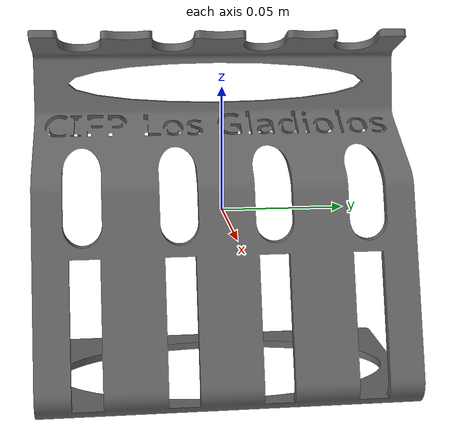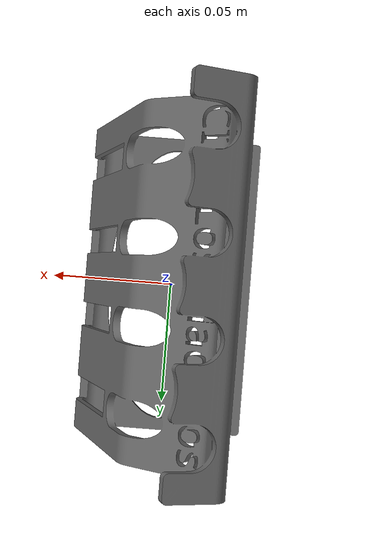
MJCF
<?xml version="1.0" ?>
<mujoco model="pipettes_stand">
  <asset>
    <material name="Scene_-_Root" specular="0.4000000000000001" shininess="0.001" rgba="0.40000000 0.40000000 0.40000000 1.0"/>
    <mesh file="../pipettes_stand/pipettes_stand.obj" scale="0.000625 0.000625 0.000625"/>
    <mesh file="../pipettes_stand/pipettes_stand_collision_0.obj" scale="0.000625 0.000625 0.000625"/>
    <mesh file="../pipettes_stand/pipettes_stand_collision_1.obj" scale="0.000625 0.000625 0.000625"/>
    <mesh file="../pipettes_stand/pipettes_stand_collision_2.obj" scale="0.000625 0.000625 0.000625"/>
    <mesh file="../pipettes_stand/pipettes_stand_collision_3.obj" scale="0.000625 0.000625 0.000625"/>
    <mesh file="../pipettes_stand/pipettes_stand_collision_4.obj" scale="0.000625 0.000625 0.000625"/>
    <mesh file="../pipettes_stand/pipettes_stand_collision_5.obj" scale="0.000625 0.000625 0.000625"/>
    <mesh file="../pipettes_stand/pipettes_stand_collision_6.obj" scale="0.000625 0.000625 0.000625"/>
    <mesh file="../pipettes_stand/pipettes_stand_collision_7.obj" scale="0.000625 0.000625 0.000625"/>
    <mesh file="../pipettes_stand/pipettes_stand_collision_8.obj" scale="0.000625 0.000625 0.000625"/>
    <mesh file="../pipettes_stand/pipettes_stand_collision_9.obj" scale="0.000625 0.000625 0.000625"/>
    <mesh file="../pipettes_stand/pipettes_stand_collision_10.obj" scale="0.000625 0.000625 0.000625"/>
    <mesh file="../pipettes_stand/pipettes_stand_collision_11.obj" scale="0.000625 0.000625 0.000625"/>
    <mesh file="../pipettes_stand/pipettes_stand_collision_12.obj" scale="0.000625 0.000625 0.000625"/>
    <mesh file="../pipettes_stand/pipettes_stand_collision_13.obj" scale="0.000625 0.000625 0.000625"/>
    <mesh file="../pipettes_stand/pipettes_stand_collision_14.obj" scale="0.000625 0.000625 0.000625"/>
    <mesh file="../pipettes_stand/pipettes_stand_collision_15.obj" scale="0.000625 0.000625 0.000625"/>
    <mesh file="../pipettes_stand/pipettes_stand_collision_16.obj" scale="0.000625 0.000625 0.000625"/>
    <mesh file="../pipettes_stand/pipettes_stand_collision_17.obj" scale="0.000625 0.000625 0.000625"/>
    <mesh file="../pipettes_stand/pipettes_stand_collision_18.obj" scale="0.000625 0.000625 0.000625"/>
    <mesh file="../pipettes_stand/pipettes_stand_collision_19.obj" scale="0.000625 0.000625 0.000625"/>
    <mesh file="../pipettes_stand/pipettes_stand_collision_20.obj" scale="0.000625 0.000625 0.000625"/>
    <mesh file="../pipettes_stand/pipettes_stand_collision_21.obj" scale="0.000625 0.000625 0.000625"/>
    <mesh file="../pipettes_stand/pipettes_stand_collision_22.obj" scale="0.000625 0.000625 0.000625"/>
    <mesh file="../pipettes_stand/pipettes_stand_collision_23.obj" scale="0.000625 0.000625 0.000625"/>
    <mesh file="../pipettes_stand/pipettes_stand_collision_24.obj" scale="0.000625 0.000625 0.000625"/>
    <mesh file="../pipettes_stand/pipettes_stand_collision_25.obj" scale="0.000625 0.000625 0.000625"/>
    <mesh file="../pipettes_stand/pipettes_stand_collision_26.obj" scale="0.000625 0.000625 0.000625"/>
    <mesh file="../pipettes_stand/pipettes_stand_collision_27.obj" scale="0.000625 0.000625 0.000625"/>
    <mesh file="../pipettes_stand/pipettes_stand_collision_28.obj" scale="0.000625 0.000625 0.000625"/>
    <mesh file="../pipettes_stand/pipettes_stand_collision_29.obj" scale="0.000625 0.000625 0.000625"/>
    <mesh file="../pipettes_stand/pipettes_stand_collision_30.obj" scale="0.000625 0.000625 0.000625"/>
    <mesh file="../pipettes_stand/pipettes_stand_collision_31.obj" scale="0.000625 0.000625 0.000625"/>
    <mesh file="../pipettes_stand/pipettes_stand_collision_32.obj" scale="0.000625 0.000625 0.000625"/>
    <mesh file="../pipettes_stand/pipettes_stand_collision_33.obj" scale="0.000625 0.000625 0.000625"/>
    <mesh file="../pipettes_stand/pipettes_stand_collision_34.obj" scale="0.000625 0.000625 0.000625"/>
    <mesh file="../pipettes_stand/pipettes_stand_collision_35.obj" scale="0.000625 0.000625 0.000625"/>
    <mesh file="../pipettes_stand/pipettes_stand_collision_36.obj" scale="0.000625 0.000625 0.000625"/>
    <mesh file="../pipettes_stand/pipettes_stand_collision_37.obj" scale="0.000625 0.000625 0.000625"/>
    <mesh file="../pipettes_stand/pipettes_stand_collision_38.obj" scale="0.000625 0.000625 0.000625"/>
    <mesh file="../pipettes_stand/pipettes_stand_collision_39.obj" scale="0.000625 0.000625 0.000625"/>
    <mesh file="../pipettes_stand/pipettes_stand_collision_40.obj" scale="0.000625 0.000625 0.000625"/>
    <mesh file="../pipettes_stand/pipettes_stand_collision_41.obj" scale="0.000625 0.000625 0.000625"/>
  </asset>
  <worldbody>
    <body name="pipettes_stand">
      <inertial pos="0 0 0.072395000159375" mass="0.02" diaginertia="0.0008 0.0008 0.0005"/>
      <geom material="Scene_-_Root" mesh="pipettes_stand" class="visual"/>
      <geom mesh="pipettes_stand_collision_0" rgba="0.8240573897192379 0.5104449831685928 0.20116122233466605 1" class="collision"/>
      <geom mesh="pipettes_stand_collision_1" rgba="0.6037161300379769 0.2277258404247967 0.3477076068366446 1" class="collision"/>
      <geom mesh="pipettes_stand_collision_2" rgba="0.8088337129805089 0.1271114478151849 0.8686890278926326 1" class="collision"/>
      <geom mesh="pipettes_stand_collision_3" rgba="0.7497385485333712 0.676776528606878 0.9144790000448622 1" class="collision"/>
      <geom mesh="pipettes_stand_collision_4" rgba="0.4850152955599798 0.8720595213370944 0.20333578630834515 1" class="collision"/>
      <geom mesh="pipettes_stand_collision_5" rgba="0.5573215921507524 0.4094182493810006 0.12511613046463654 1" class="collision"/>
      <geom mesh="pipettes_stand_collision_6" rgba="0.6511856266417332 0.9709497874084743 0.86296948224441 1" class="collision"/>
      <geom mesh="pipettes_stand_collision_7" rgba="0.33440750124740304 0.6088577832791392 0.4849724993788683 1" class="collision"/>
      <geom mesh="pipettes_stand_collision_8" rgba="0.9169382303132202 0.6791186357500446 0.581037439566858 1" class="collision"/>
      <geom mesh="pipettes_stand_collision_9" rgba="0.5913310927874232 0.7735528496211479 0.2993694530994001 1" class="collision"/>
      <geom mesh="pipettes_stand_collision_10" rgba="0.49750027581795564 0.3586493985458328 0.35425236299500684 1" class="collision"/>
      <geom mesh="pipettes_stand_collision_11" rgba="0.35328649547785396 0.05579648902332157 0.23312925727125067 1" class="collision"/>
      <geom mesh="pipettes_stand_collision_12" rgba="0.7890640859335358 0.7444440376042392 0.3337244266631476 1" class="collision"/>
      <geom mesh="pipettes_stand_collision_13" rgba="0.17178243936663928 0.34566638158384755 0.4669787010849954 1" class="collision"/>
      <geom mesh="pipettes_stand_collision_14" rgba="0.596043920561171 0.9918765990365508 0.8256135667322225 1" class="collision"/>
      <geom mesh="pipettes_stand_collision_15" rgba="0.5097709569322526 0.3251793250200784 0.9446248347445682 1" class="collision"/>
      <geom mesh="pipettes_stand_collision_16" rgba="0.36179528440903785 0.9727996927648833 0.7794809203809933 1" class="collision"/>
      <geom mesh="pipettes_stand_collision_17" rgba="0.04874153113507451 0.09995940472447729 0.726949053514335 1" class="collision"/>
      <geom mesh="pipettes_stand_collision_18" rgba="0.5115239043304449 0.5388928566062008 0.668086467893343 1" class="collision"/>
      <geom mesh="pipettes_stand_collision_19" rgba="0.18499735957297547 0.6544156576299859 0.9710683629888809 1" class="collision"/>
      <geom mesh="pipettes_stand_collision_20" rgba="0.2010260306137882 0.4246406369758521 0.4409990464255984 1" class="collision"/>
      <geom mesh="pipettes_stand_collision_21" rgba="0.9941665543819979 0.6447349935562618 0.5786847303356959 1" class="collision"/>
      <geom mesh="pipettes_stand_collision_22" rgba="0.8357827531354959 0.9024482558243521 0.9585853858477874 1" class="collision"/>
      <geom mesh="pipettes_stand_collision_23" rgba="0.8337332277795717 0.9097509676459103 0.08166982727307459 1" class="collision"/>
      <geom mesh="pipettes_stand_collision_24" rgba="0.21519613455066577 0.6055989309707689 0.06469921714179283 1" class="collision"/>
      <geom mesh="pipettes_stand_collision_25" rgba="0.16854546230194922 0.31729533822887235 0.1590861747327651 1" class="collision"/>
      <geom mesh="pipettes_stand_collision_26" rgba="0.1139745396177182 0.5976681421664214 0.524404656166454 1" class="collision"/>
      <geom mesh="pipettes_stand_collision_27" rgba="0.7920583643797627 0.5326635241055488 0.01423151730896266 1" class="collision"/>
      <geom mesh="pipettes_stand_collision_28" rgba="0.11467543008844128 0.08035777219109919 0.492810403898747 1" class="collision"/>
      <geom mesh="pipettes_stand_collision_29" rgba="0.08479908231179178 0.1028089790210781 0.4185196620328063 1" class="collision"/>
      <geom mesh="pipettes_stand_collision_30" rgba="0.640892896670335 0.3864468920591717 0.5803052915246767 1" class="collision"/>
      <geom mesh="pipettes_stand_collision_31" rgba="0.20166634747350365 0.12024871502427636 0.6357273726496189 1" class="collision"/>
      <geom mesh="pipettes_stand_collision_32" rgba="0.27258209733322836 0.28751147574832214 0.7631544827272012 1" class="collision"/>
      <geom mesh="pipettes_stand_collision_33" rgba="0.20204124994083472 0.6442787819015127 0.5305759034791291 1" class="collision"/>
      <geom mesh="pipettes_stand_collision_34" rgba="0.9524005380409728 0.010531478574031028 0.157313117253572 1" class="collision"/>
      <geom mesh="pipettes_stand_collision_35" rgba="0.5777444622788478 0.5376849357428555 0.3487732434115751 1" class="collision"/>
      <geom mesh="pipettes_stand_collision_36" rgba="0.5752128491069891 0.3480388357082417 0.10880161266153165 1" class="collision"/>
      <geom mesh="pipettes_stand_collision_37" rgba="0.5204014862540435 0.7254802863592266 0.5634694430471408 1" class="collision"/>
      <geom mesh="pipettes_stand_collision_38" rgba="0.13921127426236124 0.3819135582820985 0.20918762589080642 1" class="collision"/>
      <geom mesh="pipettes_stand_collision_39" rgba="0.4308554311513453 0.634860682810005 0.6813771066394876 1" class="collision"/>
      <geom mesh="pipettes_stand_collision_40" rgba="0.8196725192726578 0.38035178875608333 0.7653845231054948 1" class="collision"/>
      <geom mesh="pipettes_stand_collision_41" rgba="0.7079827262047751 0.6927303762648999 0.2202482576146323 1" class="collision"/>
      <site class="grasppoint" pos="0.0000 0.0000 0.1158"/>
      <site class="grasppoint" pos="0.0000 0.0000 0.1258"/>
      <site class="grasppoint" pos="0.0000 0.0000 0.1358"/>
        <site name="top_site" pos="0 0 0.1" size="0.01" rgba="1 0 0 0"/>
    <site name="bottom_site" pos="0 0 0.0" size="0.01" rgba="0 1 0 0"/>
</body>
  </worldbody>
  <compiler boundmass="0.075" boundinertia="5e-05" angle="radian"/>
  <default>
    <default class="visual">
      <geom group="2" type="mesh" contype="0" conaffinity="0" density="50"/>
    </default>
    <default class="collision">
      <geom group="3" type="mesh" density="50" friction="1.5 0.1 0.1" solimp="0.9 0.95 0.001" solref="0.02 1"/>
    </default>
    <default class="grasppoint">
      <site type="sphere" size="0.005" group="4" rgba="0 0 1 1"/>
    </default>
  </default>
</mujoco>
